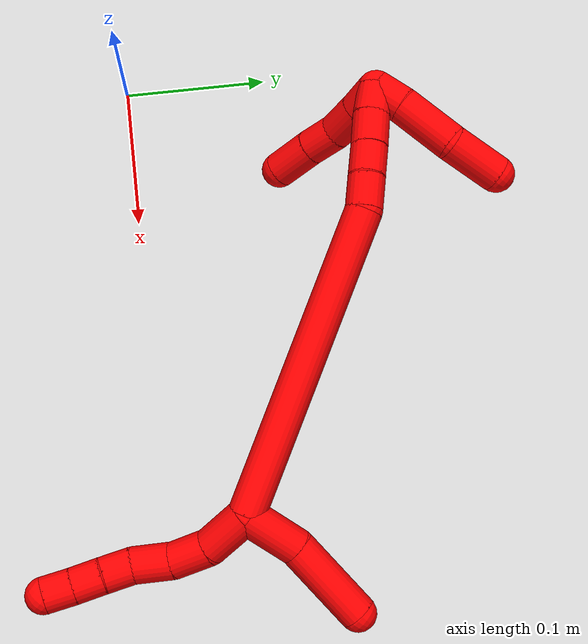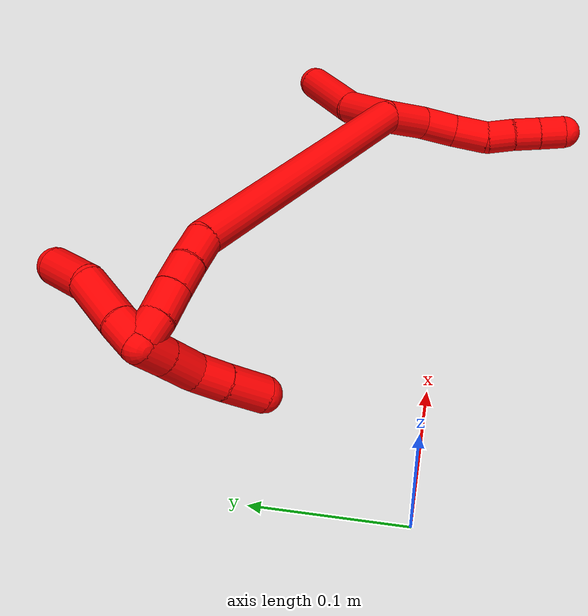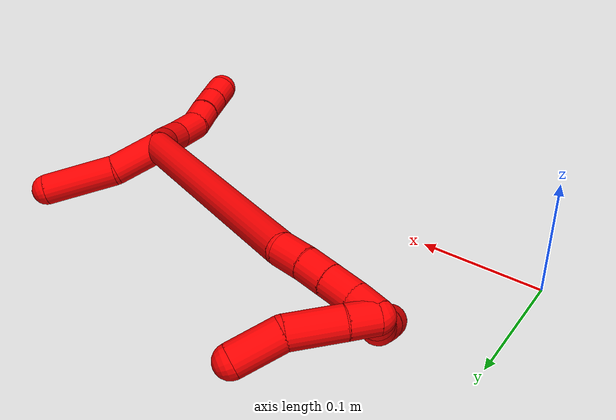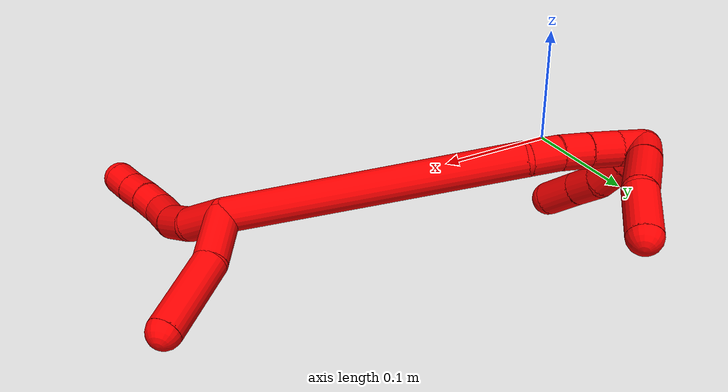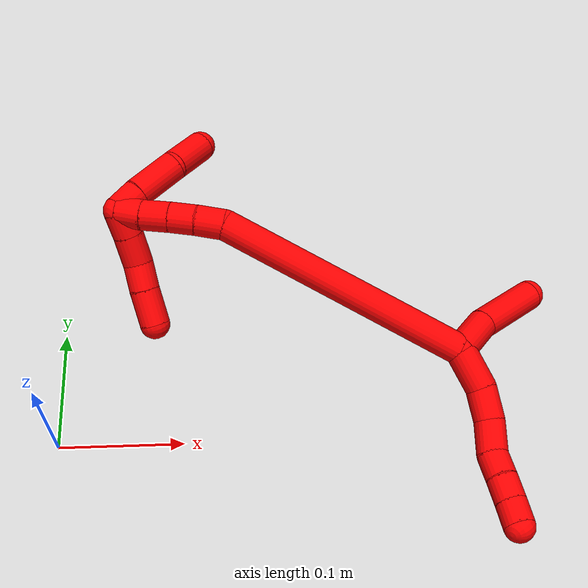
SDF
<sdf version="1.7">
 <world name="default">
  <model name="2">
   <static>0</static>
   <link name="2">
    <collision name="collision-cylinder-e_1_2_8">
     <pose>0.012534 -0.011779 0.00163 1.43331 0.811687 0.716379</pose>
     <geometry><cylinder><radius>0.0125</radius><length>0.034554</length></cylinder></geometry>
     <surface>
      <friction><ode><mu>1.16</mu><mu2>1.16</mu2><slip1>0</slip1><slip2>0</slip2></ode></friction>
      <contact><ode><kp>1e+06</kp><kd>1</kd><max_vel>0</max_vel><min_depth>0.001</min_depth></ode></contact>
     </surface>
    </collision>
    <visual name="visual-cylinder-e_1_2_8">
     <pose>0.012534 -0.011779 0.00163 1.43331 0.811687 0.716379</pose>
     <geometry><cylinder><radius>0.0125</radius><length>0.034554</length></cylinder></geometry>
     <material><ambient>1 0 0 1</ambient></material>
    </visual>
    <collision name="collision-cylinder-e_2_8_9">
     <pose>0.033791 -0.032285 0.008898 0.997152 0.698469 0.391462</pose>
     <geometry><cylinder><radius>0.0125</radius><length>0.027134</length></cylinder></geometry>
     <surface>
      <friction><ode><mu>1.16</mu><mu2>1.16</mu2><slip1>0</slip1><slip2>0</slip2></ode></friction>
      <contact><ode><kp>1e+06</kp><kd>1</kd><max_vel>0</max_vel><min_depth>0.001</min_depth></ode></contact>
     </surface>
    </collision>
    <visual name="visual-cylinder-e_2_8_9">
     <pose>0.033791 -0.032285 0.008898 0.997152 0.698469 0.391462</pose>
     <geometry><cylinder><radius>0.0125</radius><length>0.027134</length></cylinder></geometry>
     <material><ambient>1 0 0 1</ambient></material>
    </visual>
    <collision name="collision-cylinder-e_3_9_10">
     <pose>0.050401 -0.047575 0.023609 0.626285 0.613563 0.20443</pose>
     <geometry><cylinder><radius>0.0125</radius><length>0.027391</length></cylinder></geometry>
     <surface>
      <friction><ode><mu>1.16</mu><mu2>1.16</mu2><slip1>0</slip1><slip2>0</slip2></ode></friction>
      <contact><ode><kp>1e+06</kp><kd>1</kd><max_vel>0</max_vel><min_depth>0.001</min_depth></ode></contact>
     </surface>
    </collision>
    <visual name="visual-cylinder-e_3_9_10">
     <pose>0.050401 -0.047575 0.023609 0.626285 0.613563 0.20443</pose>
     <geometry><cylinder><radius>0.0125</radius><length>0.027391</length></cylinder></geometry>
     <material><ambient>1 0 0 1</ambient></material>
    </visual>
    <collision name="collision-cylinder-e_4_10_11">
     <pose>0.066362 -0.056788 0.038571 0.422782 0.896198 0.205592</pose>
     <geometry><cylinder><radius>0.0125</radius><length>0.02068</length></cylinder></geometry>
     <surface>
      <friction><ode><mu>1.16</mu><mu2>1.16</mu2><slip1>0</slip1><slip2>0</slip2></ode></friction>
      <contact><ode><kp>1e+06</kp><kd>1</kd><max_vel>0</max_vel><min_depth>0.001</min_depth></ode></contact>
     </surface>
    </collision>
    <visual name="visual-cylinder-e_4_10_11">
     <pose>0.066362 -0.056788 0.038571 0.422782 0.896198 0.205592</pose>
     <geometry><cylinder><radius>0.0125</radius><length>0.02068</length></cylinder></geometry>
     <material><ambient>1 0 0 1</ambient></material>
    </visual>
    <collision name="collision-cylinder-e_5_11_12">
     <pose>0.082218 -0.062861 0.049928 0.559318 0.878601 0.268291</pose>
     <geometry><cylinder><radius>0.0125</radius><length>0.020213</length></cylinder></geometry>
     <surface>
      <friction><ode><mu>1.16</mu><mu2>1.16</mu2><slip1>0</slip1><slip2>0</slip2></ode></friction>
      <contact><ode><kp>1e+06</kp><kd>1</kd><max_vel>0</max_vel><min_depth>0.001</min_depth></ode></contact>
     </surface>
    </collision>
    <visual name="visual-cylinder-e_5_11_12">
     <pose>0.082218 -0.062861 0.049928 0.559318 0.878601 0.268291</pose>
     <geometry><cylinder><radius>0.0125</radius><length>0.020213</length></cylinder></geometry>
     <material><ambient>1 0 0 1</ambient></material>
    </visual>
    <collision name="collision-cylinder-e_6_12_6">
     <pose>0.097579 -0.069283 0.061209 0.476372 0.858829 0.221448</pose>
     <geometry><cylinder><radius>0.0125</radius><length>0.020028</length></cylinder></geometry>
     <surface>
      <friction><ode><mu>1.16</mu><mu2>1.16</mu2><slip1>0</slip1><slip2>0</slip2></ode></friction>
      <contact><ode><kp>1e+06</kp><kd>1</kd><max_vel>0</max_vel><min_depth>0.001</min_depth></ode></contact>
     </surface>
    </collision>
    <visual name="visual-cylinder-e_6_12_6">
     <pose>0.097579 -0.069283 0.061209 0.476372 0.858829 0.221448</pose>
     <geometry><cylinder><radius>0.0125</radius><length>0.020028</length></cylinder></geometry>
     <material><ambient>1 0 0 1</ambient></material>
    </visual>
    <collision name="collision-cylinder-e_1_2_13">
     <pose>-0.001929 -0.000521 -0.020053 3.11562 -0.095883 -2.61296</pose>
     <geometry><cylinder><radius>0.0125</radius><length>0.040305</length></cylinder></geometry>
     <surface>
      <friction><ode><mu>1.16</mu><mu2>1.16</mu2><slip1>0</slip1><slip2>0</slip2></ode></friction>
      <contact><ode><kp>1e+06</kp><kd>1</kd><max_vel>0</max_vel><min_depth>0.001</min_depth></ode></contact>
     </surface>
    </collision>
    <visual name="visual-cylinder-e_1_2_13">
     <pose>-0.001929 -0.000521 -0.020053 3.11562 -0.095883 -2.61296</pose>
     <geometry><cylinder><radius>0.0125</radius><length>0.040305</length></cylinder></geometry>
     <material><ambient>1 0 0 1</ambient></material>
    </visual>
    <collision name="collision-cylinder-e_2_13_5">
     <pose>0.001231 -0.001074 -0.069517 3.14048 0.171371 3.12869</pose>
     <geometry><cylinder><radius>0.0125</radius><length>0.059695</length></cylinder></geometry>
     <surface>
      <friction><ode><mu>1.16</mu><mu2>1.16</mu2><slip1>0</slip1><slip2>0</slip2></ode></friction>
      <contact><ode><kp>1e+06</kp><kd>1</kd><max_vel>0</max_vel><min_depth>0.001</min_depth></ode></contact>
     </surface>
    </collision>
    <visual name="visual-cylinder-e_2_13_5">
     <pose>0.001231 -0.001074 -0.069517 3.14048 0.171371 3.12869</pose>
     <geometry><cylinder><radius>0.0125</radius><length>0.059695</length></cylinder></geometry>
     <material><ambient>1 0 0 1</ambient></material>
    </visual>
    <collision name="collision-cylinder-e_1_2_14">
     <pose>-0.096337 0.031328 0.030274 -0.802513 -1.1461 0.534454</pose>
     <geometry><cylinder><radius>0.0125</radius><length>0.211459</length></cylinder></geometry>
     <surface>
      <friction><ode><mu>1.16</mu><mu2>1.16</mu2><slip1>0</slip1><slip2>0</slip2></ode></friction>
      <contact><ode><kp>1e+06</kp><kd>1</kd><max_vel>0</max_vel><min_depth>0.001</min_depth></ode></contact>
     </surface>
    </collision>
    <visual name="visual-cylinder-e_1_2_14">
     <pose>-0.096337 0.031328 0.030274 -0.802513 -1.1461 0.534454</pose>
     <geometry><cylinder><radius>0.0125</radius><length>0.211459</length></cylinder></geometry>
     <material><ambient>1 0 0 1</ambient></material>
    </visual>
    <collision name="collision-cylinder-e_2_14_15">
     <pose>-0.202817 0.063141 0.06616 -0.086027 -1.06384 0.050647</pose>
     <geometry><cylinder><radius>0.0125</radius><length>0.023204</length></cylinder></geometry>
     <surface>
      <friction><ode><mu>1.16</mu><mu2>1.16</mu2><slip1>0</slip1><slip2>0</slip2></ode></friction>
      <contact><ode><kp>1e+06</kp><kd>1</kd><max_vel>0</max_vel><min_depth>0.001</min_depth></ode></contact>
     </surface>
    </collision>
    <visual name="visual-cylinder-e_2_14_15">
     <pose>-0.202817 0.063141 0.06616 -0.086027 -1.06384 0.050647</pose>
     <geometry><cylinder><radius>0.0125</radius><length>0.023204</length></cylinder></geometry>
     <material><ambient>1 0 0 1</ambient></material>
    </visual>
    <collision name="collision-cylinder-e_3_15_16">
     <pose>-0.222504 0.063195 0.076608 0.088692 -1.10023 -0.054414</pose>
     <geometry><cylinder><radius>0.0125</radius><length>0.021417</length></cylinder></geometry>
     <surface>
      <friction><ode><mu>1.16</mu><mu2>1.16</mu2><slip1>0</slip1><slip2>0</slip2></ode></friction>
      <contact><ode><kp>1e+06</kp><kd>1</kd><max_vel>0</max_vel><min_depth>0.001</min_depth></ode></contact>
     </surface>
    </collision>
    <visual name="visual-cylinder-e_3_15_16">
     <pose>-0.222504 0.063195 0.076608 0.088692 -1.10023 -0.054414</pose>
     <geometry><cylinder><radius>0.0125</radius><length>0.021417</length></cylinder></geometry>
     <material><ambient>1 0 0 1</ambient></material>
    </visual>
    <collision name="collision-cylinder-e_4_16_17">
     <pose>-0.242408 0.061902 0.08681 0.159303 -1.08764 -0.096449</pose>
     <geometry><cylinder><radius>0.0125</radius><length>0.023397</length></cylinder></geometry>
     <surface>
      <friction><ode><mu>1.16</mu><mu2>1.16</mu2><slip1>0</slip1><slip2>0</slip2></ode></friction>
      <contact><ode><kp>1e+06</kp><kd>1</kd><max_vel>0</max_vel><min_depth>0.001</min_depth></ode></contact>
     </surface>
    </collision>
    <visual name="visual-cylinder-e_4_16_17">
     <pose>-0.242408 0.061902 0.08681 0.159303 -1.08764 -0.096449</pose>
     <geometry><cylinder><radius>0.0125</radius><length>0.023397</length></cylinder></geometry>
     <material><ambient>1 0 0 1</ambient></material>
    </visual>
    <collision name="collision-cylinder-e_5_17_1">
     <pose>-0.262201 0.060941 0.096213 0.024701 -1.16632 -0.016296</pose>
     <geometry><cylinder><radius>0.0125</radius><length>0.020523</length></cylinder></geometry>
     <surface>
      <friction><ode><mu>1.16</mu><mu2>1.16</mu2><slip1>0</slip1><slip2>0</slip2></ode></friction>
      <contact><ode><kp>1e+06</kp><kd>1</kd><max_vel>0</max_vel><min_depth>0.001</min_depth></ode></contact>
     </surface>
    </collision>
    <visual name="visual-cylinder-e_5_17_1">
     <pose>-0.262201 0.060941 0.096213 0.024701 -1.16632 -0.016296</pose>
     <geometry><cylinder><radius>0.0125</radius><length>0.020523</length></cylinder></geometry>
     <material><ambient>1 0 0 1</ambient></material>
    </visual>
    <collision name="collision-cylinder-e_1_1_18">
     <pose>-0.271027 0.064359 0.08999 -2.81124 0.055862 -0.332114</pose>
     <geometry><cylinder><radius>0.0125</radius><length>0.021726</length></cylinder></geometry>
     <surface>
      <friction><ode><mu>1.16</mu><mu2>1.16</mu2><slip1>0</slip1><slip2>0</slip2></ode></friction>
      <contact><ode><kp>1e+06</kp><kd>1</kd><max_vel>0</max_vel><min_depth>0.001</min_depth></ode></contact>
     </surface>
    </collision>
    <visual name="visual-cylinder-e_1_1_18">
     <pose>-0.271027 0.064359 0.08999 -2.81124 0.055862 -0.332114</pose>
     <geometry><cylinder><radius>0.0125</radius><length>0.021726</length></cylinder></geometry>
     <material><ambient>1 0 0 1</ambient></material>
    </visual>
    <collision name="collision-cylinder-e_2_18_19">
     <pose>-0.268133 0.072918 0.060159 -2.88955 0.112742 -0.838053</pose>
     <geometry><cylinder><radius>0.0125</radius><length>0.040679</length></cylinder></geometry>
     <surface>
      <friction><ode><mu>1.16</mu><mu2>1.16</mu2><slip1>0</slip1><slip2>0</slip2></ode></friction>
      <contact><ode><kp>1e+06</kp><kd>1</kd><max_vel>0</max_vel><min_depth>0.001</min_depth></ode></contact>
     </surface>
    </collision>
    <visual name="visual-cylinder-e_2_18_19">
     <pose>-0.268133 0.072918 0.060159 -2.88955 0.112742 -0.838053</pose>
     <geometry><cylinder><radius>0.0125</radius><length>0.040679</length></cylinder></geometry>
     <material><ambient>1 0 0 1</ambient></material>
    </visual>
    <collision name="collision-cylinder-e_3_19_4">
     <pose>-0.267843 0.077934 0.021896 3.14031 -0.106537 -3.11752</pose>
     <geometry><cylinder><radius>0.0125</radius><length>0.037595</length></cylinder></geometry>
     <surface>
      <friction><ode><mu>1.16</mu><mu2>1.16</mu2><slip1>0</slip1><slip2>0</slip2></ode></friction>
      <contact><ode><kp>1e+06</kp><kd>1</kd><max_vel>0</max_vel><min_depth>0.001</min_depth></ode></contact>
     </surface>
    </collision>
    <visual name="visual-cylinder-e_3_19_4">
     <pose>-0.267843 0.077934 0.021896 3.14031 -0.106537 -3.11752</pose>
     <geometry><cylinder><radius>0.0125</radius><length>0.037595</length></cylinder></geometry>
     <material><ambient>1 0 0 1</ambient></material>
    </visual>
    <collision name="collision-cylinder-e_1_1_20">
     <pose>-0.267338 0.051052 0.099942 1.60227 0.413409 0.426238</pose>
     <geometry><cylinder><radius>0.0125</radius><length>0.021389</length></cylinder></geometry>
     <surface>
      <friction><ode><mu>1.16</mu><mu2>1.16</mu2><slip1>0</slip1><slip2>0</slip2></ode></friction>
      <contact><ode><kp>1e+06</kp><kd>1</kd><max_vel>0</max_vel><min_depth>0.001</min_depth></ode></contact>
     </surface>
    </collision>
    <visual name="visual-cylinder-e_1_1_20">
     <pose>-0.267338 0.051052 0.099942 1.60227 0.413409 0.426238</pose>
     <geometry><cylinder><radius>0.0125</radius><length>0.021389</length></cylinder></geometry>
     <material><ambient>1 0 0 1</ambient></material>
    </visual>
    <collision name="collision-cylinder-e_2_20_21">
     <pose>-0.257956 0.029384 0.099921 1.5466 0.404346 0.394931</pose>
     <geometry><cylinder><radius>0.0125</radius><length>0.025852</length></cylinder></geometry>
     <surface>
      <friction><ode><mu>1.16</mu><mu2>1.16</mu2><slip1>0</slip1><slip2>0</slip2></ode></friction>
      <contact><ode><kp>1e+06</kp><kd>1</kd><max_vel>0</max_vel><min_depth>0.001</min_depth></ode></contact>
     </surface>
    </collision>
    <visual name="visual-cylinder-e_2_20_21">
     <pose>-0.257956 0.029384 0.099921 1.5466 0.404346 0.394931</pose>
     <geometry><cylinder><radius>0.0125</radius><length>0.025852</length></cylinder></geometry>
     <material><ambient>1 0 0 1</ambient></material>
    </visual>
    <collision name="collision-cylinder-e_3_21_22">
     <pose>-0.247012 0.008193 0.103088 1.27087 0.541303 0.403666</pose>
     <geometry><cylinder><radius>0.0125</radius><length>0.022743</length></cylinder></geometry>
     <surface>
      <friction><ode><mu>1.16</mu><mu2>1.16</mu2><slip1>0</slip1><slip2>0</slip2></ode></friction>
      <contact><ode><kp>1e+06</kp><kd>1</kd><max_vel>0</max_vel><min_depth>0.001</min_depth></ode></contact>
     </surface>
    </collision>
    <visual name="visual-cylinder-e_3_21_22">
     <pose>-0.247012 0.008193 0.103088 1.27087 0.541303 0.403666</pose>
     <geometry><cylinder><radius>0.0125</radius><length>0.022743</length></cylinder></geometry>
     <material><ambient>1 0 0 1</ambient></material>
    </visual>
    <collision name="collision-cylinder-e_4_22_3">
     <pose>-0.233034 -0.013385 0.108943 1.33285 0.57154 0.454165</pose>
     <geometry><cylinder><radius>0.0125</radius><length>0.030017</length></cylinder></geometry>
     <surface>
      <friction><ode><mu>1.16</mu><mu2>1.16</mu2><slip1>0</slip1><slip2>0</slip2></ode></friction>
      <contact><ode><kp>1e+06</kp><kd>1</kd><max_vel>0</max_vel><min_depth>0.001</min_depth></ode></contact>
     </surface>
    </collision>
    <visual name="visual-cylinder-e_4_22_3">
     <pose>-0.233034 -0.013385 0.108943 1.33285 0.57154 0.454165</pose>
     <geometry><cylinder><radius>0.0125</radius><length>0.030017</length></cylinder></geometry>
     <material><ambient>1 0 0 1</ambient></material>
    </visual>
    <collision name="collision-sphere-3">
     <pose>-0.224916 -0.025653 0.111918 0 -0 0</pose>
     <geometry><sphere><radius>0.0125</radius></sphere></geometry>
     <surface>
      <friction><ode><mu>1.16</mu><mu2>1.16</mu2><slip1>0</slip1><slip2>0</slip2></ode></friction>
      <contact><ode><kp>1e+06</kp><kd>1</kd><max_vel>0</max_vel><min_depth>0.001</min_depth></ode></contact>
     </surface>
    </collision>
    <visual name="visual-sphere-3">
     <pose>-0.224916 -0.025653 0.111918 0 -0 0</pose>
     <geometry><sphere><radius>0.0125</radius></sphere></geometry>
     <material><ambient>1 0 0 1</ambient></material>
    </visual>
    <collision name="collision-sphere-22">
     <pose>-0.241153 -0.001118 0.105968 0 -0 0</pose>
     <geometry><sphere><radius>0.0125</radius></sphere></geometry>
     <surface>
      <friction><ode><mu>1.16</mu><mu2>1.16</mu2><slip1>0</slip1><slip2>0</slip2></ode></friction>
      <contact><ode><kp>1e+06</kp><kd>1</kd><max_vel>0</max_vel><min_depth>0.001</min_depth></ode></contact>
     </surface>
    </collision>
    <visual name="visual-sphere-22">
     <pose>-0.241153 -0.001118 0.105968 0 -0 0</pose>
     <geometry><sphere><radius>0.0125</radius></sphere></geometry>
     <material><ambient>1 0 0 1</ambient></material>
    </visual>
    <collision name="collision-sphere-21">
     <pose>-0.252871 0.017504 0.100209 0 -0 0</pose>
     <geometry><sphere><radius>0.0125</radius></sphere></geometry>
     <surface>
      <friction><ode><mu>1.16</mu><mu2>1.16</mu2><slip1>0</slip1><slip2>0</slip2></ode></friction>
      <contact><ode><kp>1e+06</kp><kd>1</kd><max_vel>0</max_vel><min_depth>0.001</min_depth></ode></contact>
     </surface>
    </collision>
    <visual name="visual-sphere-21">
     <pose>-0.252871 0.017504 0.100209 0 -0 0</pose>
     <geometry><sphere><radius>0.0125</radius></sphere></geometry>
     <material><ambient>1 0 0 1</ambient></material>
    </visual>
    <collision name="collision-sphere-20">
     <pose>-0.263041 0.041264 0.099634 0 -0 0</pose>
     <geometry><sphere><radius>0.0125</radius></sphere></geometry>
     <surface>
      <friction><ode><mu>1.16</mu><mu2>1.16</mu2><slip1>0</slip1><slip2>0</slip2></ode></friction>
      <contact><ode><kp>1e+06</kp><kd>1</kd><max_vel>0</max_vel><min_depth>0.001</min_depth></ode></contact>
     </surface>
    </collision>
    <visual name="visual-sphere-20">
     <pose>-0.263041 0.041264 0.099634 0 -0 0</pose>
     <geometry><sphere><radius>0.0125</radius></sphere></geometry>
     <material><ambient>1 0 0 1</ambient></material>
    </visual>
    <collision name="collision-sphere-4">
     <pose>-0.269842 0.07791 0.003206 0 -0 0</pose>
     <geometry><sphere><radius>0.0125</radius></sphere></geometry>
     <surface>
      <friction><ode><mu>1.16</mu><mu2>1.16</mu2><slip1>0</slip1><slip2>0</slip2></ode></friction>
      <contact><ode><kp>1e+06</kp><kd>1</kd><max_vel>0</max_vel><min_depth>0.001</min_depth></ode></contact>
     </surface>
    </collision>
    <visual name="visual-sphere-4">
     <pose>-0.269842 0.07791 0.003206 0 -0 0</pose>
     <geometry><sphere><radius>0.0125</radius></sphere></geometry>
     <material><ambient>1 0 0 1</ambient></material>
    </visual>
    <collision name="collision-sphere-12">
     <pose>0.089998 -0.066283 0.055395 0 -0 0</pose>
     <geometry><sphere><radius>0.0125</radius></sphere></geometry>
     <surface>
      <friction><ode><mu>1.16</mu><mu2>1.16</mu2><slip1>0</slip1><slip2>0</slip2></ode></friction>
      <contact><ode><kp>1e+06</kp><kd>1</kd><max_vel>0</max_vel><min_depth>0.001</min_depth></ode></contact>
     </surface>
    </collision>
    <visual name="visual-sphere-12">
     <pose>0.089998 -0.066283 0.055395 0 -0 0</pose>
     <geometry><sphere><radius>0.0125</radius></sphere></geometry>
     <material><ambient>1 0 0 1</ambient></material>
    </visual>
    <collision name="collision-sphere-11">
     <pose>0.074437 -0.059438 0.044461 0 -0 0</pose>
     <geometry><sphere><radius>0.0125</radius></sphere></geometry>
     <surface>
      <friction><ode><mu>1.16</mu><mu2>1.16</mu2><slip1>0</slip1><slip2>0</slip2></ode></friction>
      <contact><ode><kp>1e+06</kp><kd>1</kd><max_vel>0</max_vel><min_depth>0.001</min_depth></ode></contact>
     </surface>
    </collision>
    <visual name="visual-sphere-11">
     <pose>0.074437 -0.059438 0.044461 0 -0 0</pose>
     <geometry><sphere><radius>0.0125</radius></sphere></geometry>
     <material><ambient>1 0 0 1</ambient></material>
    </visual>
    <collision name="collision-sphere-10">
     <pose>0.058287 -0.054138 0.032681 0 -0 0</pose>
     <geometry><sphere><radius>0.0125</radius></sphere></geometry>
     <surface>
      <friction><ode><mu>1.16</mu><mu2>1.16</mu2><slip1>0</slip1><slip2>0</slip2></ode></friction>
      <contact><ode><kp>1e+06</kp><kd>1</kd><max_vel>0</max_vel><min_depth>0.001</min_depth></ode></contact>
     </surface>
    </collision>
    <visual name="visual-sphere-10">
     <pose>0.058287 -0.054138 0.032681 0 -0 0</pose>
     <geometry><sphere><radius>0.0125</radius></sphere></geometry>
     <material><ambient>1 0 0 1</ambient></material>
    </visual>
    <collision name="collision-sphere-9">
     <pose>0.042516 -0.041012 0.014537 0 -0 0</pose>
     <geometry><sphere><radius>0.0125</radius></sphere></geometry>
     <surface>
      <friction><ode><mu>1.16</mu><mu2>1.16</mu2><slip1>0</slip1><slip2>0</slip2></ode></friction>
      <contact><ode><kp>1e+06</kp><kd>1</kd><max_vel>0</max_vel><min_depth>0.001</min_depth></ode></contact>
     </surface>
    </collision>
    <visual name="visual-sphere-9">
     <pose>0.042516 -0.041012 0.014537 0 -0 0</pose>
     <geometry><sphere><radius>0.0125</radius></sphere></geometry>
     <material><ambient>1 0 0 1</ambient></material>
    </visual>
    <collision name="collision-sphere-2">
     <geometry><sphere><radius>0.0125</radius></sphere></geometry>
     <surface>
      <friction><ode><mu>1.16</mu><mu2>1.16</mu2><slip1>0</slip1><slip2>0</slip2></ode></friction>
      <contact><ode><kp>1e+06</kp><kd>1</kd><max_vel>0</max_vel><min_depth>0.001</min_depth></ode></contact>
     </surface>
    </collision>
    <visual name="visual-sphere-2">
     <geometry><sphere><radius>0.0125</radius></sphere></geometry>
     <material><ambient>1 0 0 1</ambient></material>
    </visual>
    <collision name="collision-sphere-19">
     <pose>-0.265844 0.077958 0.040587 0 -0 0</pose>
     <geometry><sphere><radius>0.0125</radius></sphere></geometry>
     <surface>
      <friction><ode><mu>1.16</mu><mu2>1.16</mu2><slip1>0</slip1><slip2>0</slip2></ode></friction>
      <contact><ode><kp>1e+06</kp><kd>1</kd><max_vel>0</max_vel><min_depth>0.001</min_depth></ode></contact>
     </surface>
    </collision>
    <visual name="visual-sphere-19">
     <pose>-0.265844 0.077958 0.040587 0 -0 0</pose>
     <geometry><sphere><radius>0.0125</radius></sphere></geometry>
     <material><ambient>1 0 0 1</ambient></material>
    </visual>
    <collision name="collision-sphere-8">
     <pose>0.025067 -0.023558 0.00326 0 -0 0</pose>
     <geometry><sphere><radius>0.0125</radius></sphere></geometry>
     <surface>
      <friction><ode><mu>1.16</mu><mu2>1.16</mu2><slip1>0</slip1><slip2>0</slip2></ode></friction>
      <contact><ode><kp>1e+06</kp><kd>1</kd><max_vel>0</max_vel><min_depth>0.001</min_depth></ode></contact>
     </surface>
    </collision>
    <visual name="visual-sphere-8">
     <pose>0.025067 -0.023558 0.00326 0 -0 0</pose>
     <geometry><sphere><radius>0.0125</radius></sphere></geometry>
     <material><ambient>1 0 0 1</ambient></material>
    </visual>
    <collision name="collision-sphere-6">
     <pose>0.105161 -0.072283 0.067023 0 -0 0</pose>
     <geometry><sphere><radius>0.0125</radius></sphere></geometry>
     <surface>
      <friction><ode><mu>1.16</mu><mu2>1.16</mu2><slip1>0</slip1><slip2>0</slip2></ode></friction>
      <contact><ode><kp>1e+06</kp><kd>1</kd><max_vel>0</max_vel><min_depth>0.001</min_depth></ode></contact>
     </surface>
    </collision>
    <visual name="visual-sphere-6">
     <pose>0.105161 -0.072283 0.067023 0 -0 0</pose>
     <geometry><sphere><radius>0.0125</radius></sphere></geometry>
     <material><ambient>1 0 0 1</ambient></material>
    </visual>
    <collision name="collision-sphere-13">
     <pose>-0.003859 -0.001042 -0.040106 0 -0 0</pose>
     <geometry><sphere><radius>0.0125</radius></sphere></geometry>
     <surface>
      <friction><ode><mu>1.16</mu><mu2>1.16</mu2><slip1>0</slip1><slip2>0</slip2></ode></friction>
      <contact><ode><kp>1e+06</kp><kd>1</kd><max_vel>0</max_vel><min_depth>0.001</min_depth></ode></contact>
     </surface>
    </collision>
    <visual name="visual-sphere-13">
     <pose>-0.003859 -0.001042 -0.040106 0 -0 0</pose>
     <geometry><sphere><radius>0.0125</radius></sphere></geometry>
     <material><ambient>1 0 0 1</ambient></material>
    </visual>
    <collision name="collision-sphere-5">
     <pose>0.006321 -0.001107 -0.098927 0 -0 0</pose>
     <geometry><sphere><radius>0.0125</radius></sphere></geometry>
     <surface>
      <friction><ode><mu>1.16</mu><mu2>1.16</mu2><slip1>0</slip1><slip2>0</slip2></ode></friction>
      <contact><ode><kp>1e+06</kp><kd>1</kd><max_vel>0</max_vel><min_depth>0.001</min_depth></ode></contact>
     </surface>
    </collision>
    <visual name="visual-sphere-5">
     <pose>0.006321 -0.001107 -0.098927 0 -0 0</pose>
     <geometry><sphere><radius>0.0125</radius></sphere></geometry>
     <material><ambient>1 0 0 1</ambient></material>
    </visual>
    <collision name="collision-sphere-14">
     <pose>-0.192674 0.062657 0.060548 0 -0 0</pose>
     <geometry><sphere><radius>0.0125</radius></sphere></geometry>
     <surface>
      <friction><ode><mu>1.16</mu><mu2>1.16</mu2><slip1>0</slip1><slip2>0</slip2></ode></friction>
      <contact><ode><kp>1e+06</kp><kd>1</kd><max_vel>0</max_vel><min_depth>0.001</min_depth></ode></contact>
     </surface>
    </collision>
    <visual name="visual-sphere-14">
     <pose>-0.192674 0.062657 0.060548 0 -0 0</pose>
     <geometry><sphere><radius>0.0125</radius></sphere></geometry>
     <material><ambient>1 0 0 1</ambient></material>
    </visual>
    <collision name="collision-sphere-15">
     <pose>-0.212959 0.063625 0.071772 0 -0 0</pose>
     <geometry><sphere><radius>0.0125</radius></sphere></geometry>
     <surface>
      <friction><ode><mu>1.16</mu><mu2>1.16</mu2><slip1>0</slip1><slip2>0</slip2></ode></friction>
      <contact><ode><kp>1e+06</kp><kd>1</kd><max_vel>0</max_vel><min_depth>0.001</min_depth></ode></contact>
     </surface>
    </collision>
    <visual name="visual-sphere-15">
     <pose>-0.212959 0.063625 0.071772 0 -0 0</pose>
     <geometry><sphere><radius>0.0125</radius></sphere></geometry>
     <material><ambient>1 0 0 1</ambient></material>
    </visual>
    <collision name="collision-sphere-16">
     <pose>-0.232048 0.062765 0.081444 0 -0 0</pose>
     <geometry><sphere><radius>0.0125</radius></sphere></geometry>
     <surface>
      <friction><ode><mu>1.16</mu><mu2>1.16</mu2><slip1>0</slip1><slip2>0</slip2></ode></friction>
      <contact><ode><kp>1e+06</kp><kd>1</kd><max_vel>0</max_vel><min_depth>0.001</min_depth></ode></contact>
     </surface>
    </collision>
    <visual name="visual-sphere-16">
     <pose>-0.232048 0.062765 0.081444 0 -0 0</pose>
     <geometry><sphere><radius>0.0125</radius></sphere></geometry>
     <material><ambient>1 0 0 1</ambient></material>
    </visual>
    <collision name="collision-sphere-17">
     <pose>-0.252767 0.06104 0.092176 0 -0 0</pose>
     <geometry><sphere><radius>0.0125</radius></sphere></geometry>
     <surface>
      <friction><ode><mu>1.16</mu><mu2>1.16</mu2><slip1>0</slip1><slip2>0</slip2></ode></friction>
      <contact><ode><kp>1e+06</kp><kd>1</kd><max_vel>0</max_vel><min_depth>0.001</min_depth></ode></contact>
     </surface>
    </collision>
    <visual name="visual-sphere-17">
     <pose>-0.252767 0.06104 0.092176 0 -0 0</pose>
     <geometry><sphere><radius>0.0125</radius></sphere></geometry>
     <material><ambient>1 0 0 1</ambient></material>
    </visual>
    <collision name="collision-sphere-1">
     <pose>-0.271634 0.060841 0.10025 0 -0 0</pose>
     <geometry><sphere><radius>0.0125</radius></sphere></geometry>
     <surface>
      <friction><ode><mu>1.16</mu><mu2>1.16</mu2><slip1>0</slip1><slip2>0</slip2></ode></friction>
      <contact><ode><kp>1e+06</kp><kd>1</kd><max_vel>0</max_vel><min_depth>0.001</min_depth></ode></contact>
     </surface>
    </collision>
    <visual name="visual-sphere-1">
     <pose>-0.271634 0.060841 0.10025 0 -0 0</pose>
     <geometry><sphere><radius>0.0125</radius></sphere></geometry>
     <material><ambient>1 0 0 1</ambient></material>
    </visual>
    <collision name="collision-sphere-18">
     <pose>-0.270421 0.067877 0.079731 0 -0 0</pose>
     <geometry><sphere><radius>0.0125</radius></sphere></geometry>
     <surface>
      <friction><ode><mu>1.16</mu><mu2>1.16</mu2><slip1>0</slip1><slip2>0</slip2></ode></friction>
      <contact><ode><kp>1e+06</kp><kd>1</kd><max_vel>0</max_vel><min_depth>0.001</min_depth></ode></contact>
     </surface>
    </collision>
    <visual name="visual-sphere-18">
     <pose>-0.270421 0.067877 0.079731 0 -0 0</pose>
     <geometry><sphere><radius>0.0125</radius></sphere></geometry>
     <material><ambient>1 0 0 1</ambient></material>
    </visual>
    <inertial>
     <pose>-0.113394 0.019425 0.037551 0 -0 0</pose>
     <mass>0.75</mass>
     <inertia>
      <ixx>0.000434</ixx>
      <ixy>0</ixy>
      <ixz>0</ixz>
      <iyy>0.000948</iyy>
      <iyz>0</iyz>
      <izz>0.000491</izz>
     </inertia>
    </inertial>
   </link>
   <pose>0.32059 0.054548 0.041851 1.25213 -0.182763 -0.670942</pose>
  </model>
 </world>
</sdf>
